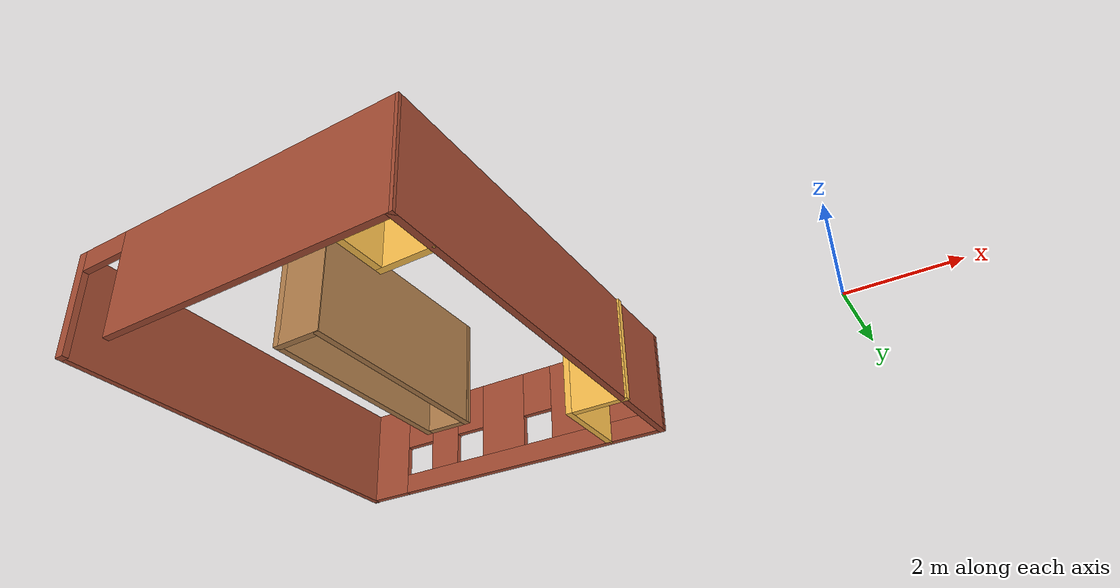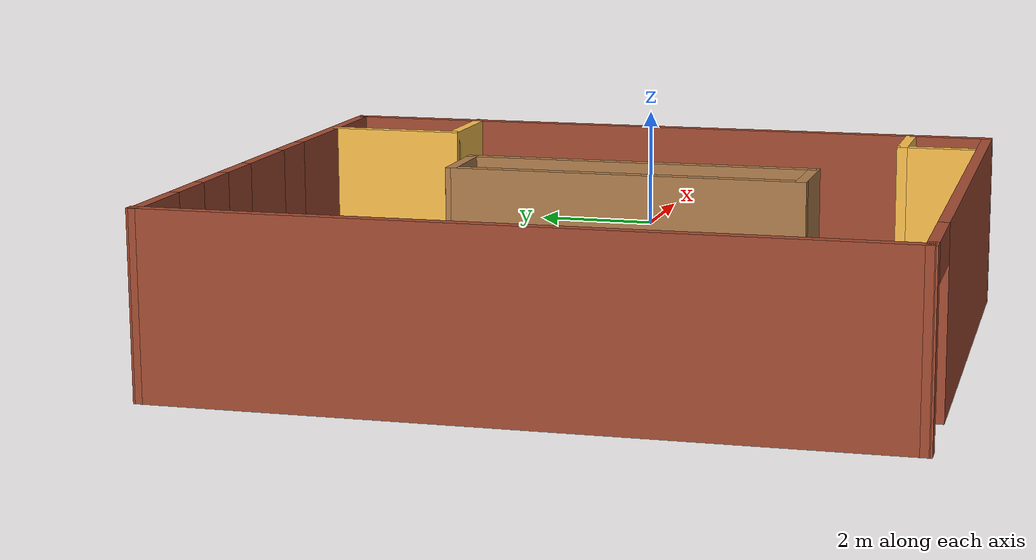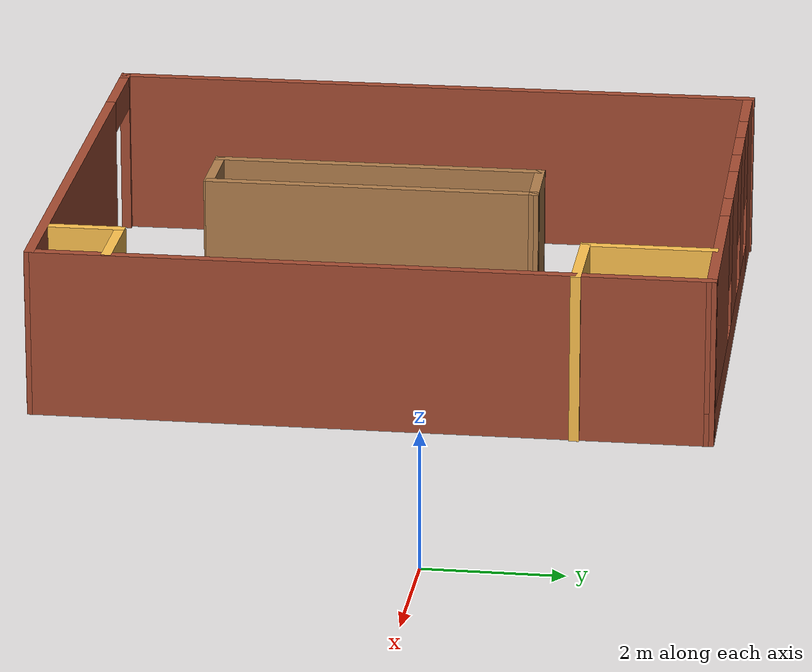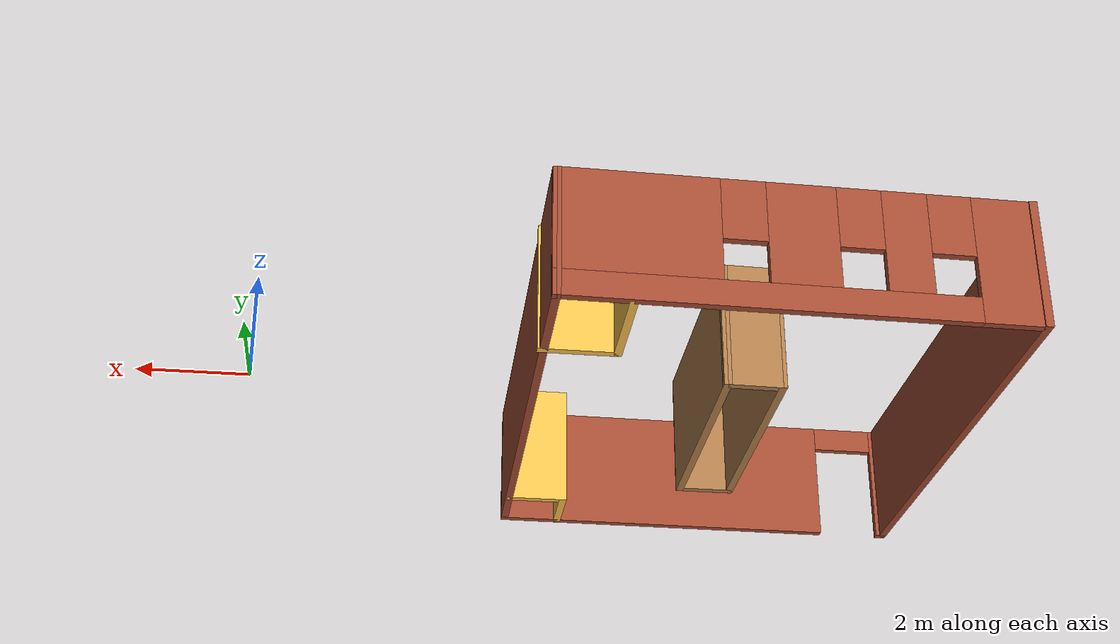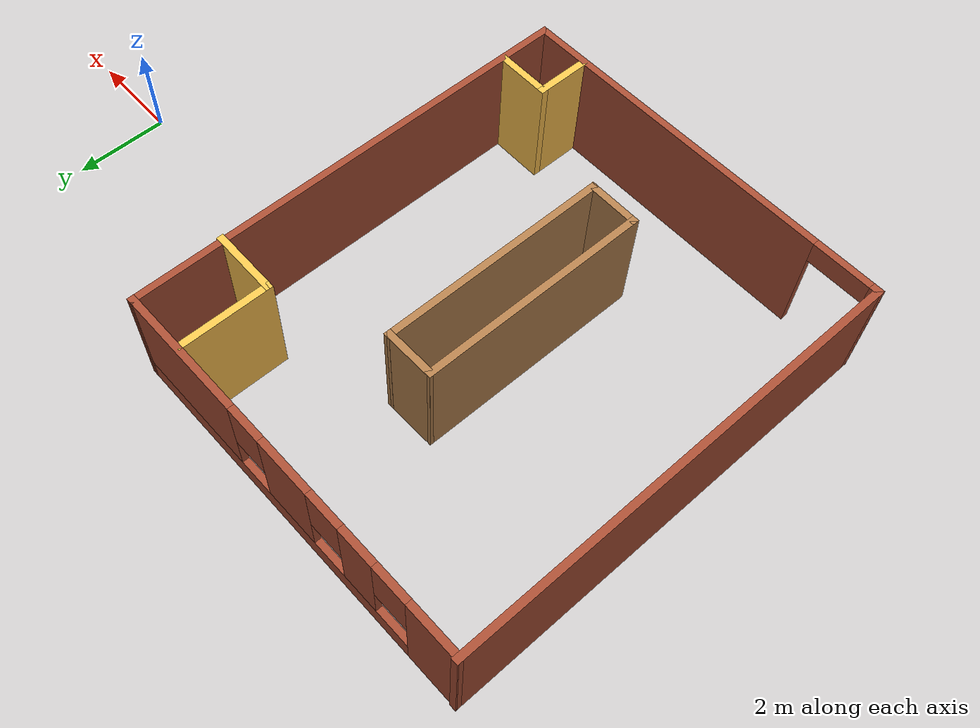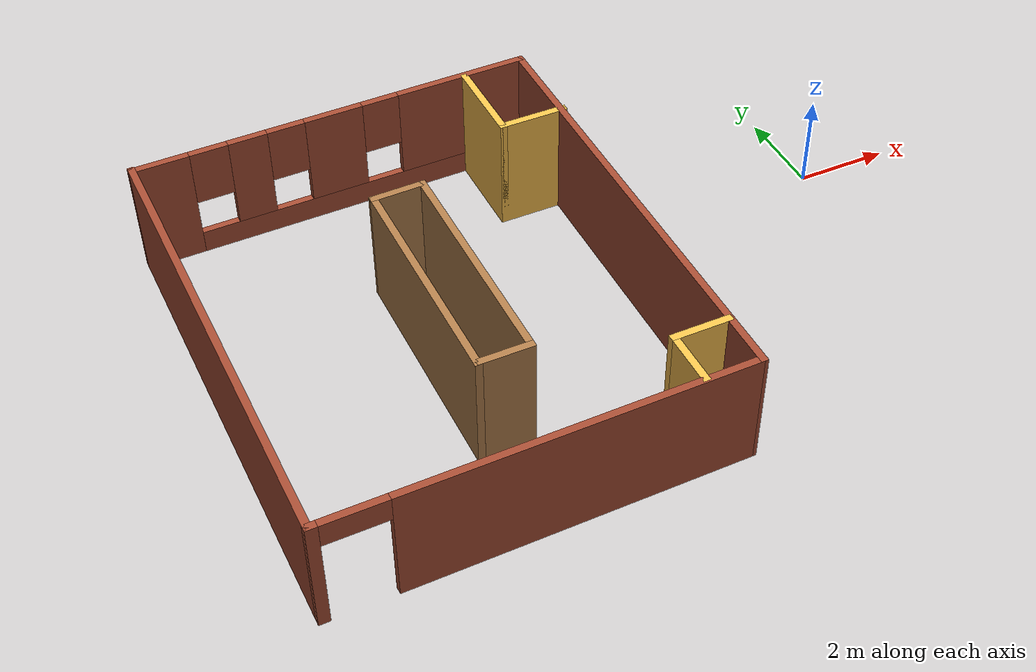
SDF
<?xml version='1.0'?>
<sdf version='1.6'>
  <model name='lab_building'>
    <pose frame=''>-9.33033 -1.43887 0 0 -0 0</pose>
    <link name='Wall_12'>
      <collision name='Wall_12_Collision'>
        <geometry>
          <box>
            <size>10 0.15 2.5</size>
          </box>
        </geometry>
        <pose frame=''>0 0 1.25 0 -0 0</pose>
      </collision>
      <visual name='Wall_12_Visual'>
        <pose frame=''>0 0 1.25 0 -0 0</pose>
        <geometry>
          <box>
            <size>10 0.15 2.5</size>
          </box>
        </geometry>
        <material>
          <script>
            <uri>file://media/materials/scripts/gazebo.material</uri>
            <name>Gazebo/Bricks</name>
          </script>
          <ambient>1 0.764706 0.305882 1</ambient>
        </material>
        <meta>
          <layer>0</layer>
        </meta>
      </visual>
      <pose frame=''>4.20065 0.039749 0 0 0 -1.5708</pose>
    </link>
    <link name='Wall_13'>
      <pose frame=''>0.007047 -4.92515 0 0 0 -3.13208</pose>
      <visual name='Wall_13_Visual_0'>
        <pose frame=''>-0.739972 0 1.25 0 -0 0</pose>
        <geometry>
          <box>
            <size>7.05763 0.15 2.5</size>
          </box>
        </geometry>
        <material>
          <script>
            <uri>file://media/materials/scripts/gazebo.material</uri>
            <name>Gazebo/Bricks</name>
          </script>
          <ambient>1 0.764706 0.305882 1</ambient>
        </material>
        <meta>
          <layer>0</layer>
        </meta>
      </visual>
      <collision name='Wall_13_Collision_0'>
        <geometry>
          <box>
            <size>7.05763 0.15 2.5</size>
          </box>
        </geometry>
        <pose frame=''>-0.739972 0 1.25 0 -0 0</pose>
      </collision>
      <visual name='Wall_13_Visual_1'>
        <pose frame=''>4.15372 0 1.25 0 -0 0</pose>
        <geometry>
          <box>
            <size>0.230143 0.15 2.5</size>
          </box>
        </geometry>
        <material>
          <script>
            <uri>file://media/materials/scripts/gazebo.material</uri>
            <name>Gazebo/Bricks</name>
          </script>
          <ambient>1 0.764706 0.305882 1</ambient>
        </material>
        <meta>
          <layer>0</layer>
        </meta>
      </visual>
      <collision name='Wall_13_Collision_1'>
        <geometry>
          <box>
            <size>0.230143 0.15 2.5</size>
          </box>
        </geometry>
        <pose frame=''>4.15372 0 1.25 0 -0 0</pose>
      </collision>
      <visual name='Wall_13_Visual_2'>
        <pose frame=''>3.41375 0 2.25 0 -0 0</pose>
        <geometry>
          <box>
            <size>1.2498 0.15 0.5</size>
          </box>
        </geometry>
        <material>
          <script>
            <uri>file://media/materials/scripts/gazebo.material</uri>
            <name>Gazebo/Bricks</name>
          </script>
          <ambient>1 0.764706 0.305882 1</ambient>
        </material>
        <meta>
          <layer>0</layer>
        </meta>
      </visual>
      <collision name='Wall_13_Collision_2'>
        <geometry>
          <box>
            <size>1.2498 0.15 0.5</size>
          </box>
        </geometry>
        <pose frame=''>3.41375 0 2.25 0 -0 0</pose>
      </collision>
    </link>
    <link name='Wall_14'>
      <collision name='Wall_14_Collision'>
        <geometry>
          <box>
            <size>9.96517 0.15 2.5</size>
          </box>
        </geometry>
        <pose frame=''>0 0 1.25 0 -0 0</pose>
      </collision>
      <visual name='Wall_14_Visual'>
        <pose frame=''>0 0 1.25 0 -0 0</pose>
        <geometry>
          <box>
            <size>9.96517 0.15 2.5</size>
          </box>
        </geometry>
        <material>
          <script>
            <uri>file://media/materials/scripts/gazebo.material</uri>
            <name>Gazebo/Bricks</name>
          </script>
          <ambient>0.921569 0.807843 0.615686 1</ambient>
        </material>
        <meta>
          <layer>0</layer>
        </meta>
      </visual>
      <pose frame=''>-4.21382 -0.030941 0 0 -0 1.57635</pose>
    </link>
    <link name='Wall_16'>
      <collision name='Wall_16_Collision'>
        <geometry>
          <box>
            <size>5 0.15 2.5</size>
          </box>
        </geometry>
        <pose frame=''>0 0 1.25 0 -0 0</pose>
      </collision>
      <visual name='Wall_16_Visual'>
        <pose frame=''>0 0 1.25 0 -0 0</pose>
        <geometry>
          <box>
            <size>5 0.15 2.5</size>
          </box>
        </geometry>
        <material>
          <script>
            <uri>file://media/materials/scripts/gazebo.material</uri>
            <name>Gazebo/Wood</name>
          </script>
          <ambient>1 1 1 1</ambient>
        </material>
        <meta>
          <layer>0</layer>
        </meta>
      </visual>
      <pose frame=''>-0.297729 -0.405781 0 0 0 -1.5708</pose>
    </link>
    <link name='Wall_17'>
      <collision name='Wall_17_Collision'>
        <geometry>
          <box>
            <size>1.18061 0.15 2.5</size>
          </box>
        </geometry>
        <pose frame=''>0 0 1.25 0 -0 0</pose>
      </collision>
      <visual name='Wall_17_Visual'>
        <pose frame=''>0 0 1.25 0 -0 0</pose>
        <geometry>
          <box>
            <size>1.18061 0.15 2.5</size>
          </box>
        </geometry>
        <material>
          <script>
            <uri>file://media/materials/scripts/gazebo.material</uri>
            <name>Gazebo/Wood</name>
          </script>
          <ambient>1 1 1 1</ambient>
        </material>
        <meta>
          <layer>0</layer>
        </meta>
      </visual>
      <pose frame=''>0.217575 -2.83078 0 0 -0 0</pose>
    </link>
    <link name='Wall_18'>
      <collision name='Wall_18_Collision'>
        <geometry>
          <box>
            <size>5 0.15 2.5</size>
          </box>
        </geometry>
        <pose frame=''>0 0 1.25 0 -0 0</pose>
      </collision>
      <visual name='Wall_18_Visual'>
        <pose frame=''>0 0 1.25 0 -0 0</pose>
        <geometry>
          <box>
            <size>5 0.15 2.5</size>
          </box>
        </geometry>
        <material>
          <script>
            <uri>file://media/materials/scripts/gazebo.material</uri>
            <name>Gazebo/Wood</name>
          </script>
          <ambient>1 1 1 1</ambient>
        </material>
        <meta>
          <layer>0</layer>
        </meta>
      </visual>
      <pose frame=''>0.732879 -0.38265 0 0 -0 1.5708</pose>
    </link>
    <link name='Wall_20'>
      <collision name='Wall_20_Collision'>
        <geometry>
          <box>
            <size>1.18087 0.15 2.5</size>
          </box>
        </geometry>
        <pose frame=''>0 0 1.25 0 -0 0</pose>
      </collision>
      <visual name='Wall_20_Visual'>
        <pose frame=''>0 0 1.25 0 -0 0</pose>
        <geometry>
          <box>
            <size>1.18087 0.15 2.5</size>
          </box>
        </geometry>
        <material>
          <script>
            <uri>file://media/materials/scripts/gazebo.material</uri>
            <name>Gazebo/Wood</name>
          </script>
          <ambient>1 1 1 1</ambient>
        </material>
        <meta>
          <layer>0</layer>
        </meta>
      </visual>
      <pose frame=''>0.217575 2.03078 0 0 -0 0.02244</pose>
    </link>
    <link name='Wall_22'>
      <collision name='Wall_22_Collision'>
        <geometry>
          <box>
            <size>2 0.15 2.5</size>
          </box>
        </geometry>
        <pose frame=''>0 0 1.25 0 -0 0</pose>
      </collision>
      <visual name='Wall_22_Visual'>
        <pose frame=''>0 0 1.25 0 -0 0</pose>
        <geometry>
          <box>
            <size>2 0.15 2.5</size>
          </box>
        </geometry>
        <material>
          <script>
            <uri>file://media/materials/scripts/gazebo.material</uri>
            <name>Gazebo/Grey</name>
          </script>
          <ambient>1 0.764706 0.305882 1</ambient>
        </material>
        <meta>
          <layer>0</layer>
        </meta>
      </visual>
      <pose frame=''>2.89211 3.95211 0 0 0 -1.5708</pose>
    </link>
    <link name='Wall_23'>
      <collision name='Wall_23_Collision'>
        <geometry>
          <box>
            <size>1.5 0.15 2.5</size>
          </box>
        </geometry>
        <pose frame=''>0 0 1.25 0 -0 0</pose>
      </collision>
      <visual name='Wall_23_Visual'>
        <pose frame=''>0 0 1.25 0 -0 0</pose>
        <geometry>
          <box>
            <size>1.5 0.15 2.5</size>
          </box>
        </geometry>
        <material>
          <script>
            <uri>file://media/materials/scripts/gazebo.material</uri>
            <name>Gazebo/Grey</name>
          </script>
          <ambient>1 0.764706 0.305882 1</ambient>
        </material>
        <meta>
          <layer>0</layer>
        </meta>
      </visual>
      <pose frame=''>3.56711 3.02711 0 0 -0 0</pose>
    </link>
    <link name='Wall_25'>
      <collision name='Wall_25_Collision'>
        <geometry>
          <box>
            <size>1.25 0.15 2.5</size>
          </box>
        </geometry>
        <pose frame=''>0 0 1.25 0 -0 0</pose>
      </collision>
      <visual name='Wall_25_Visual'>
        <pose frame=''>0 0 1.25 0 -0 0</pose>
        <geometry>
          <box>
            <size>1.25 0.15 2.5</size>
          </box>
        </geometry>
        <material>
          <script>
            <uri>file://media/materials/scripts/gazebo.material</uri>
            <name>Gazebo/Grey</name>
          </script>
          <ambient>1 0.764706 0.305882 1</ambient>
        </material>
        <meta>
          <layer>0</layer>
        </meta>
      </visual>
      <pose frame=''>3.61888 -3.76298 0 0 -0 3.14159</pose>
    </link>
    <link name='Wall_26'>
      <collision name='Wall_26_Collision'>
        <geometry>
          <box>
            <size>1.25 0.15 2.5</size>
          </box>
        </geometry>
        <pose frame=''>0 0 1.25 0 -0 0</pose>
      </collision>
      <visual name='Wall_26_Visual'>
        <pose frame=''>0 0 1.25 0 -0 0</pose>
        <geometry>
          <box>
            <size>1.25 0.15 2.5</size>
          </box>
        </geometry>
        <material>
          <script>
            <uri>file://media/materials/scripts/gazebo.material</uri>
            <name>Gazebo/Grey</name>
          </script>
          <ambient>1 0.764706 0.305882 1</ambient>
        </material>
        <meta>
          <layer>0</layer>
        </meta>
      </visual>
      <pose frame=''>3.06888 -4.31298 0 0 0 -1.5708</pose>
    </link>
    <link name='Wall_9'>
      <pose frame=''>-0.020224 4.90736 0 0 -0 0.013596</pose>
      <visual name='Wall_9_Visual_0'>
        <pose frame=''>-3.68829 0 1.25 0 -0 0</pose>
        <geometry>
          <box>
            <size>1.21595 0.15 2.5</size>
          </box>
        </geometry>
        <material>
          <script>
            <uri>file://media/materials/scripts/gazebo.material</uri>
            <name>Gazebo/Bricks</name>
          </script>
          <ambient>1 1 1 1</ambient>
        </material>
        <meta>
          <layer>0</layer>
        </meta>
      </visual>
      <collision name='Wall_9_Collision_0'>
        <geometry>
          <box>
            <size>1.21595 0.15 2.5</size>
          </box>
        </geometry>
        <pose frame=''>-3.68829 0 1.25 0 -0 0</pose>
      </collision>
      <visual name='Wall_9_Visual_1'>
        <pose frame=''>0.607974 0 0.25 0 -0 0</pose>
        <geometry>
          <box>
            <size>7.37657 0.15 0.5</size>
          </box>
        </geometry>
        <material>
          <script>
            <uri>file://media/materials/scripts/gazebo.material</uri>
            <name>Gazebo/Bricks</name>
          </script>
          <ambient>1 1 1 1</ambient>
        </material>
        <meta>
          <layer>0</layer>
        </meta>
      </visual>
      <collision name='Wall_9_Collision_1'>
        <geometry>
          <box>
            <size>7.37657 0.15 0.5</size>
          </box>
        </geometry>
        <pose frame=''>0.607974 0 0.25 0 -0 0</pose>
      </collision>
      <visual name='Wall_9_Visual_2'>
        <pose frame=''>-1.86763 0 1.5 0 -0 0</pose>
        <geometry>
          <box>
            <size>0.825355 0.15 2</size>
          </box>
        </geometry>
        <material>
          <script>
            <uri>file://media/materials/scripts/gazebo.material</uri>
            <name>Gazebo/Bricks</name>
          </script>
          <ambient>1 1 1 1</ambient>
        </material>
        <meta>
          <layer>0</layer>
        </meta>
      </visual>
      <collision name='Wall_9_Collision_2'>
        <geometry>
          <box>
            <size>0.825355 0.15 2</size>
          </box>
        </geometry>
        <pose frame=''>-1.86763 0 1.5 0 -0 0</pose>
      </collision>
      <visual name='Wall_9_Visual_3'>
        <pose frame=''>-0.030582 0 1.5 0 -0 0</pose>
        <geometry>
          <box>
            <size>1.24875 0.15 2</size>
          </box>
        </geometry>
        <material>
          <script>
            <uri>file://media/materials/scripts/gazebo.material</uri>
            <name>Gazebo/Bricks</name>
          </script>
          <ambient>1 1 1 1</ambient>
        </material>
        <meta>
          <layer>0</layer>
        </meta>
      </visual>
      <collision name='Wall_9_Collision_3'>
        <geometry>
          <box>
            <size>1.24875 0.15 2</size>
          </box>
        </geometry>
        <pose frame=''>-0.030582 0 1.5 0 -0 0</pose>
      </collision>
      <visual name='Wall_9_Visual_4'>
        <pose frame=''>2.84503 0 1.5 0 -0 0</pose>
        <geometry>
          <box>
            <size>2.90247 0.15 2</size>
          </box>
        </geometry>
        <material>
          <script>
            <uri>file://media/materials/scripts/gazebo.material</uri>
            <name>Gazebo/Bricks</name>
          </script>
          <ambient>1 1 1 1</ambient>
        </material>
        <meta>
          <layer>0</layer>
        </meta>
      </visual>
      <collision name='Wall_9_Collision_4'>
        <geometry>
          <box>
            <size>2.90247 0.15 2</size>
          </box>
        </geometry>
        <pose frame=''>2.84503 0 1.5 0 -0 0</pose>
      </collision>
      <visual name='Wall_9_Visual_5'>
        <pose frame=''>-2.68031 0 1.9 0 -0 0</pose>
        <geometry>
          <box>
            <size>0.8 0.15 1.2</size>
          </box>
        </geometry>
        <material>
          <script>
            <uri>file://media/materials/scripts/gazebo.material</uri>
            <name>Gazebo/Bricks</name>
          </script>
          <ambient>1 1 1 1</ambient>
        </material>
        <meta>
          <layer>0</layer>
        </meta>
      </visual>
      <collision name='Wall_9_Collision_5'>
        <geometry>
          <box>
            <size>0.8 0.15 1.2</size>
          </box>
        </geometry>
        <pose frame=''>-2.68031 0 1.9 0 -0 0</pose>
      </collision>
      <visual name='Wall_9_Visual_6'>
        <pose frame=''>-1.05496 0 1.9 0 -0 0</pose>
        <geometry>
          <box>
            <size>0.8 0.15 1.2</size>
          </box>
        </geometry>
        <material>
          <script>
            <uri>file://media/materials/scripts/gazebo.material</uri>
            <name>Gazebo/Bricks</name>
          </script>
          <ambient>1 1 1 1</ambient>
        </material>
        <meta>
          <layer>0</layer>
        </meta>
      </visual>
      <collision name='Wall_9_Collision_6'>
        <geometry>
          <box>
            <size>0.8 0.15 1.2</size>
          </box>
        </geometry>
        <pose frame=''>-1.05496 0 1.9 0 -0 0</pose>
      </collision>
      <visual name='Wall_9_Visual_7'>
        <pose frame=''>0.993793 0 1.9 0 -0 0</pose>
        <geometry>
          <box>
            <size>0.8 0.15 1.2</size>
          </box>
        </geometry>
        <material>
          <script>
            <uri>file://media/materials/scripts/gazebo.material</uri>
            <name>Gazebo/Bricks</name>
          </script>
          <ambient>1 1 1 1</ambient>
        </material>
        <meta>
          <layer>0</layer>
        </meta>
      </visual>
      <collision name='Wall_9_Collision_7'>
        <geometry>
          <box>
            <size>0.8 0.15 1.2</size>
          </box>
        </geometry>
        <pose frame=''>0.993793 0 1.9 0 -0 0</pose>
      </collision>
    </link>
    <static>1</static>
  </model>
</sdf>
